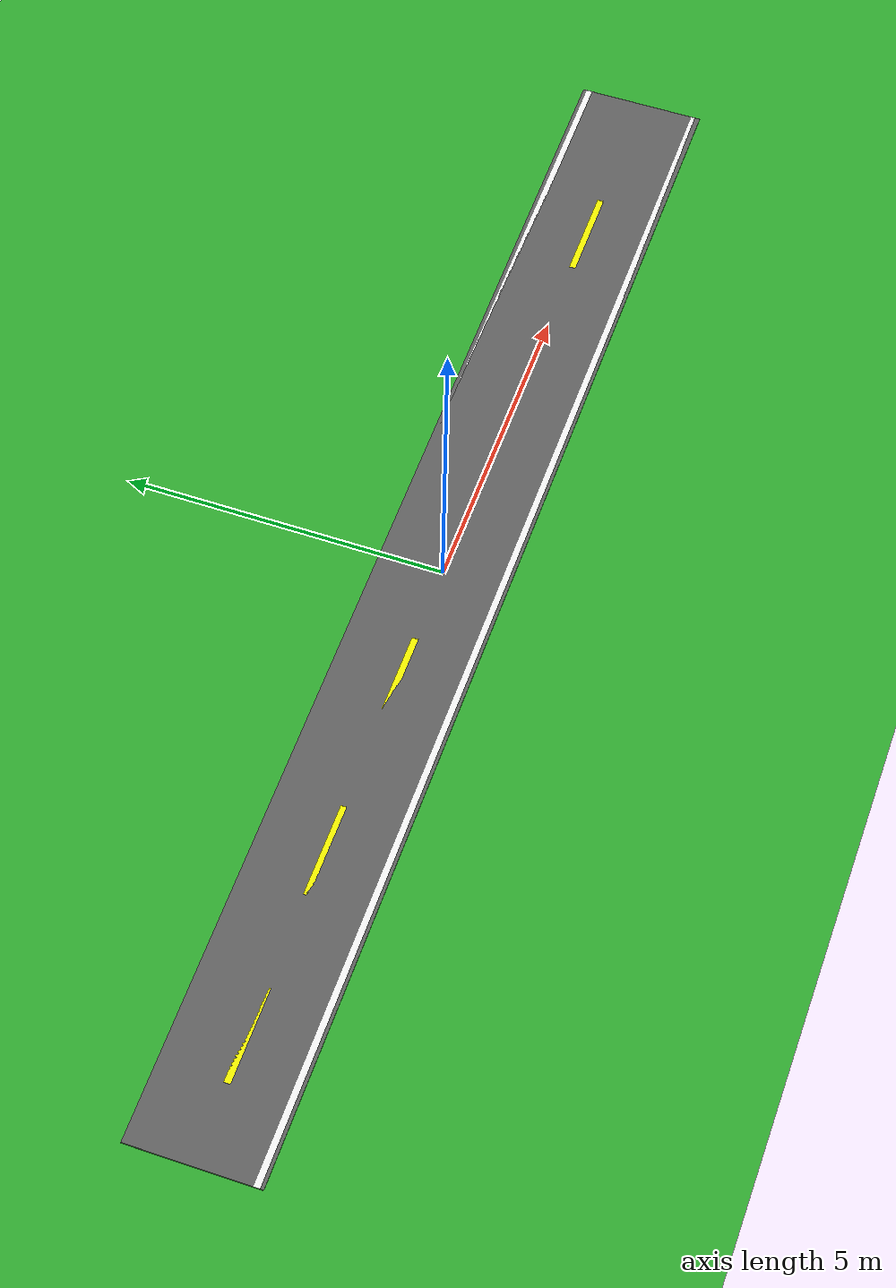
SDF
<?xml version="1.0" ?>
<sdf version="1.8">
  <world name="lane_world">

    <!-- Physics settings -->
    <physics name="default_physics" default="true" type="ode">
      <gravity>0 0 -9.8</gravity>
      <ode>
        <solver>
          <type>quick</type>
          <iters>150</iters>
          <sor>1.3</sor>
        </solver>
        <constraints>
          <cfm>0.00001</cfm>
          <erp>0.2</erp>
          <contact_max_correcting_vel>1000</contact_max_correcting_vel>
          <contact_surface_layer>0.01</contact_surface_layer>
        </constraints>
      </ode>
      <max_step_size>0.004</max_step_size>
      <real_time_factor>1.0</real_time_factor>
      <real_time_update_rate>250</real_time_update_rate>
    </physics>

    <!-- Scene settings -->
    <scene>
      <ambient>0.5 0.5 0.5 1</ambient>
      <background>0.7 0.8 1.0 1</background>
      <shadows>true</shadows>
    </scene>

    <!-- Sun light -->
    <light type="directional" name="sun">
      <cast_shadows>true</cast_shadows>
      <pose>0 0 10 0 0 0</pose>
      <diffuse>0.8 0.8 0.8 1</diffuse>
      <specular>0.2 0.2 0.2 1</specular>
      <direction>-0.5 0.1 -0.9</direction>
    </light>

    <!-- Ground plane -->
    <model name="ground_plane">
      <static>true</static>
      <link name="link">
        <collision name="collision">
          <geometry>
            <plane>
              <normal>0 0 1</normal>
              <size>100 100</size>
            </plane>
          </geometry>
        </collision>
        <visual name="visual">
          <geometry>
            <plane>
              <normal>0 0 1</normal>
              <size>100 100</size>
            </plane>
          </geometry>
          <material>
            <ambient>0.2 0.7 0.2 1</ambient>
            <diffuse>0.2 0.7 0.2 1</diffuse>
            <specular>0.01 0.01 0.01 1</specular>
          </material>
        </visual>
      </link>
    </model>

    <!-- Straight road -->
    <model name="road">
      <static>true</static>
      <link name="road_link">
        <visual name="road_visual">
          <pose>0 0 0.01 0 0 0</pose>
          <geometry>
            <box>
              <size>20 2 0.02</size>
            </box>
          </geometry>
          <material>
            <ambient>0.3 0.3 0.3 1</ambient>
            <diffuse>0.4 0.4 0.4 1</diffuse>
            <specular>0.1 0.1 0.1 1</specular>
          </material>
        </visual>
        <collision name="road_collision">
          <pose>0 0 0.01 0 0 0</pose>
          <geometry>
            <box>
              <size>20 2 0.02</size>
            </box>
          </geometry>
        </collision>
      </link>
    </model>

    <!-- Left lane boundary (white) -->
    <model name="left_lane_boundary">
      <static>true</static>
      <link name="boundary_link">
        <visual name="boundary_visual">
          <pose>0 0.9 0.015 0 0 0</pose>
          <geometry>
            <box>
              <size>20 0.1 0.01</size>
            </box>
          </geometry>
          <material>
            <ambient>1 1 1 1</ambient>
            <diffuse>1 1 1 1</diffuse>
            <specular>0.8 0.8 0.8 1</specular>
          </material>
        </visual>
      </link>
    </model>

    <!-- Right lane boundary (white) -->
    <model name="right_lane_boundary">
      <static>true</static>
      <link name="boundary_link">
        <visual name="boundary_visual">
          <pose>0 -0.9 0.015 0 0 0</pose>
          <geometry>
            <box>
              <size>20 0.1 0.01</size>
            </box>
          </geometry>
          <material>
            <ambient>1 1 1 1</ambient>
            <diffuse>1 1 1 1</diffuse>
            <specular>0.8 0.8 0.8 1</specular>
          </material>
        </visual>
      </link>
    </model>

    <!-- Center line (yellow dashed) -->
    <model name="center_line">
      <static>true</static>
      <link name="center_link">
        <!-- Dashed center line segments -->
        <visual name="dash_1">
          <pose>-8 0 0.015 0 0 0</pose>
          <geometry>
            <box>
              <size>1.5 0.1 0.01</size>
            </box>
          </geometry>
          <material>
            <ambient>1 1 0 1</ambient>
            <diffuse>1 1 0 1</diffuse>
            <specular>0.8 0.8 0.2 1</specular>
          </material>
        </visual>

        <visual name="dash_2">
          <pose>-5 0 0.015 0 0 0</pose>
          <geometry>
            <box>
              <size>1.5 0.1 0.01</size>
            </box>
          </geometry>
          <material>
            <ambient>1 1 0 1</ambient>
            <diffuse>1 1 0 1</diffuse>
            <specular>0.8 0.8 0.2 1</specular>
          </material>
        </visual>

        <visual name="dash_3">
          <pose>-2 0 0.015 0 0 0</pose>
          <geometry>
            <box>
              <size>1.5 0.1 0.01</size>
            </box>
          </geometry>
          <material>
            <ambient>1 1 0 1</ambient>
            <diffuse>1 1 0 1</diffuse>
            <specular>0.8 0.8 0.2 1</specular>
          </material>
        </visual>

        <visual name="dash_4">
          <pose>1 0 0.015 0 0 0</pose>
          <geometry>
            <box>
              <size>1.5 0.1 0.01</size>
            </box>
          </geometry>
          <material>
            <ambient>1 1 0 1</ambient>
            <diffuse>1 1 0 1</diffuse>
            <specular>0.8 0.8 0.2 1</specular>
          </material>
        </visual>

        <visual name="dash_5">
          <pose>4 0 0.015 0 0 0</pose>
          <geometry>
            <box>
              <size>1.5 0.1 0.01</size>
            </box>
          </geometry>
          <material>
            <ambient>1 1 0 1</ambient>
            <diffuse>1 1 0 1</diffuse>
            <specular>0.8 0.8 0.2 1</specular>
          </material>
        </visual>

        <visual name="dash_6">
          <pose>7 0 0.015 0 0 0</pose>
          <geometry>
            <box>
              <size>1.5 0.1 0.01</size>
            </box>
          </geometry>
          <material>
            <ambient>1 1 0 1</ambient>
            <diffuse>1 1 0 1</diffuse>
            <specular>0.8 0.8 0.2 1</specular>
          </material>
        </visual>
      </link>
    </model>

  </world>
</sdf>
